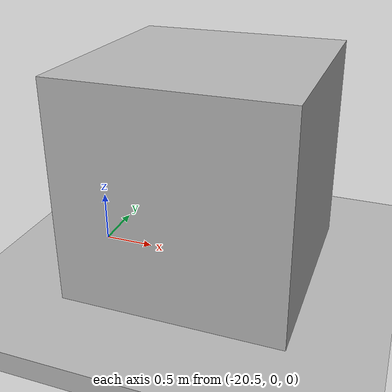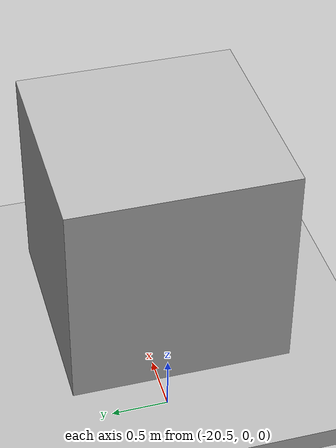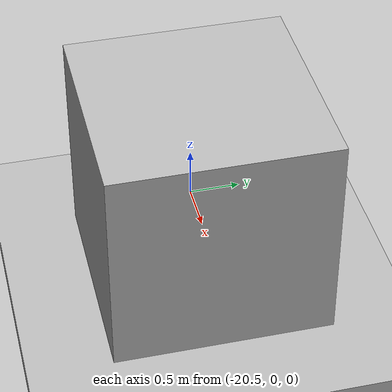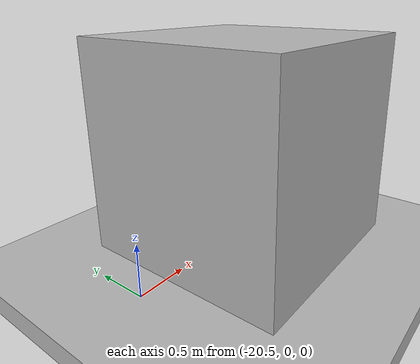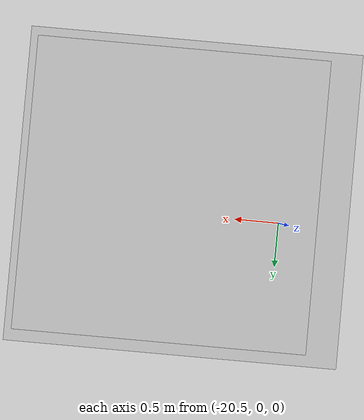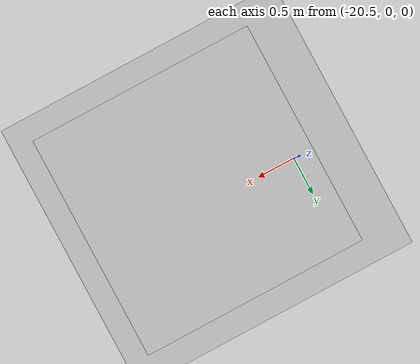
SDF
<sdf version="1.6">
 <world name="default">
  <light name="sun" type="directional">
   <pose>0 0 10 0 -0 0</pose>
   <diffuse>0.8 0.8 0.8 1</diffuse>
   <specular>0.1 0.1 0.1 1</specular>
   <attenuation>
    <range>1000</range>
    <constant>0.9</constant>
    <linear>0.01</linear>
    <quadratic>0.001</quadratic>
   </attenuation>
   <direction>-0.5 0.5 -1</direction>
  </light>
  <model name="ground_plane">
   <static>1</static>
   <link name="link">
    <collision name="collision">
     <geometry><plane><normal>0 0 1</normal><size>100 100</size></plane></geometry>
     <surface><friction><ode><mu>100</mu><mu2>50</mu2></ode></friction></surface>
    </collision>
    <visual name="visual">
     <cast_shadows>0</cast_shadows>
     <geometry><plane><normal>0 0 1</normal><size>100 100</size></plane></geometry>
     <material>
      <script><uri>file://media/materials/scripts/gazebo.material</uri><name>Gazebo/Grey</name></script>
     </material>
    </visual>
   </link>
  </model>
  <gravity>0 0 -9.8</gravity>
  <magnetic_field>6e-06 2.3e-05 -4.2e-05</magnetic_field>
  <atmosphere type="adiabatic"/>
  <physics name="default_physics" default="0" type="ode">
   <max_step_size>0.001</max_step_size>
   <real_time_factor>1</real_time_factor>
   <real_time_update_rate>1000</real_time_update_rate>
  </physics>
  <scene><ambient>0.4 0.4 0.4 1</ambient><background>0.7 0.7 0.7 1</background><shadows>1</shadows></scene>
  <spherical_coordinates>
   <surface_model>EARTH_WGS84</surface_model>
   <latitude_deg>0</latitude_deg>
   <longitude_deg>0</longitude_deg>
   <elevation>0</elevation>
   <heading_deg>0</heading_deg>
  </spherical_coordinates>
  <model name="(DS) Straight Road - 50m">
   <static>1</static>
   <link name="link">
    <inertial>
     <mass>1</mass>
     <inertia><ixx>1</ixx><iyy>1</iyy><izz>1</izz><ixy>0</ixy><ixz>0</ixz><iyz>0</iyz></inertia>
    </inertial>
    <collision name="collision">
     <geometry>
      <mesh><uri>model://ds_straight_road_50m/meshes/straight_road_50m.dae</uri><scale>1 1 1</scale></mesh>
     </geometry>
    </collision>
    <visual name="visual">
     <geometry>
      <mesh><uri>model://ds_straight_road_50m/meshes/straight_road_50m.dae</uri><scale>1 1 1</scale></mesh>
     </geometry>
    </visual>
   </link>
   <pose>-0.806093 9.73426 0 0 -0 0</pose>
  </model>
  <model name="(DS) Cube">
   <static>0</static>
   <link name="link">
    <inertial>
     <pose>0 0 1 0 -0 0</pose>
     <mass>5</mass>
     <inertia><ixx>0.833</ixx><iyy>0.833</iyy><izz>0.833</izz><ixy>0</ixy><ixz>0</ixz><iyz>0</iyz></inertia>
    </inertial>
    <collision name="collision">
     <pose>0 0 1 0 -0 0</pose>
     <geometry><mesh><uri>model://ds_cube/meshes/ds_cube.dae</uri><scale>1 1 1</scale></mesh></geometry>
    </collision>
    <visual name="visual">
     <pose>0 0 1 0 -0 0</pose>
     <geometry><mesh><uri>model://ds_cube/meshes/ds_cube.dae</uri><scale>1 1 1</scale></mesh></geometry>
    </visual>
   </link>
   <pose>-19.2959 -0.199618 0.1 0 -0 0</pose>
  </model>
 </world>
</sdf>
